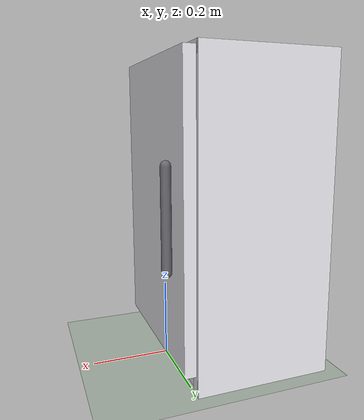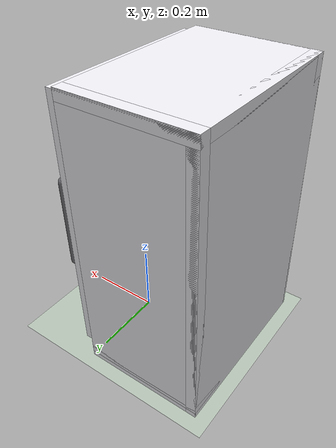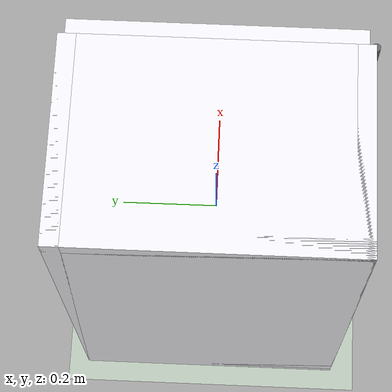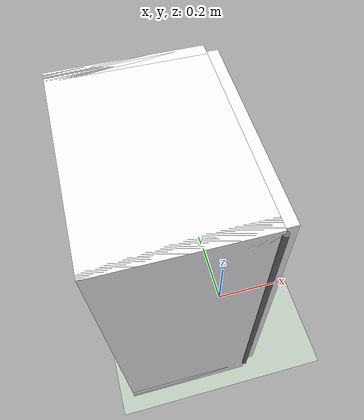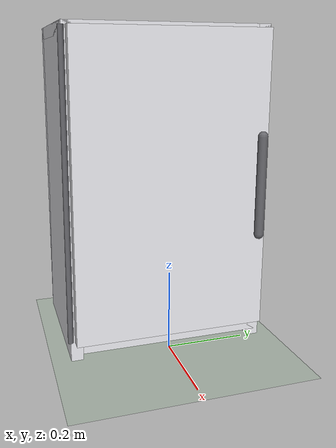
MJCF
<mujoco model="Magnetic fridge door">

  <statistic center="0 0 .4" meansize="0.03"/>

  <visual>
    <global elevation="-20" azimuth="-120"/>
    <headlight diffuse=".5 .5 .5"/>
    <map stiffness="30"/>
  </visual>

  <asset>
    <texture name="ibl" type="cube" builtin="gradient" rgb1=".5 .6 .7" rgb2=".9 .9 .95" width="32" height="32"/>
    <texture type="skybox" builtin="gradient" rgb1=".5 .6 .7" rgb2=".9 .9 .95" width="32" height="512"/>
    <material name="body" rgba=".92 .92 .94 1"/>
    <material name="inside" rgba=".8 .8 .82 1"/>
    <material name="magnet" rgba=".2 .2 .22 1"/>
  </asset>

  <worldbody>
    <light pos="1.5 -.5 2" dir="-.6 .2 -.75" diffuse=".7 .7 .7" intensity="200000"
           softness="1"/>
    <light type="image" texture="ibl" intensity="10000"/>
    <geom name="floor" type="plane" size="2 2 .01" rgba=".7 .75 .7 1"/>

    <!-- cabinet: interior x [-.35 0], y [-.25 .25], z [0 .8] -->
    <geom name="left"   type="box" size=".175 .015 .4"  pos="-.175 -.235 .4" material="body"/>
    <geom name="right"  type="box" size=".175 .015 .4"  pos="-.175 .235 .4"  material="body"/>
    <geom name="top"    type="box" size=".175 .25 .015" pos="-.175 0 .785"   material="body"/>
    <geom name="bottom" type="box" size=".175 .25 .015" pos="-.175 0 .03"    material="body"/>
    <geom name="back"   type="box" size=".015 .25 .4"   pos="-.335 0 .4"     material="body"/>
    <geom name="shelf"  type="box" size=".155 .21 .008" pos="-.18 0 .4"      material="inside"/>

    <!-- frame magnet strip, just inside the right wall's front edge -->
    <geom name="magnet1" type="box" size=".005 .01 .3" pos="-.015 .19 .4" material="magnet" adhesion="1.5" gap=".003"/>

    <body name="door" pos="0 -.25 .42">
      <joint name="hinge" pos="0 0 0" axis="0 0 -1" range="0 135" damping=".08" stiffness="0.05"/>
      <geom name="hinge" type="cylinder" size=".007" fromto="0 0 -.37 0 0 .37" rgba=".4 .4 .42 1" contype="0" conaffinity="0"/>
      <geom name="panel" type="box" size=".015 .24 .37" pos=".015 .25 0" material="body" mass="1.5"/>
      <body name="handle">
        <geom name="handle" type="capsule" size=".012" fromto=".06 .46 -.12 .06 .46 .12" rgba=".4 .4 .42 1" mass=".1"/>
      </body>
      <geom name="magnet2" type="box" size=".005 .01 .3" pos="-.005 .44 0" material="magnet" adhesion="1.5" gap=".003" mass=".05"/>
    </body>
  </worldbody>

  <keyframe>
    <key name="open" qpos="1.6"/>
    <key name="ajar" qpos=".006"/>
  </keyframe>
</mujoco>
